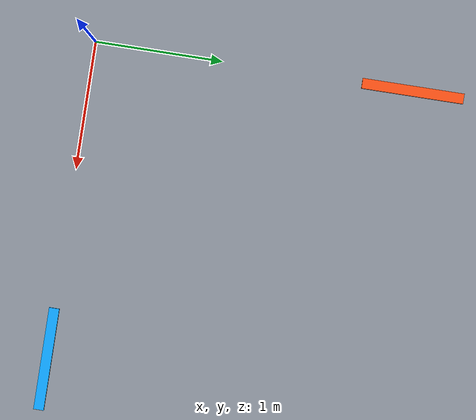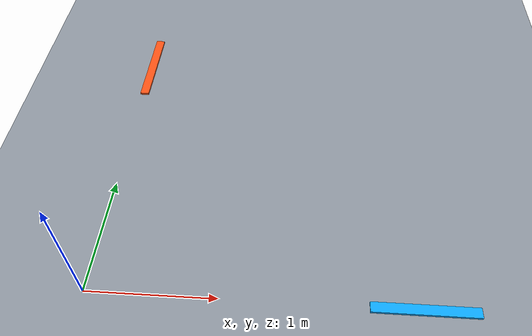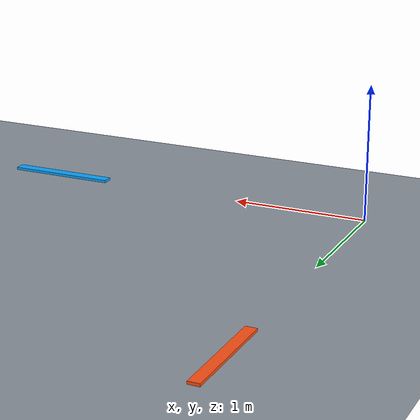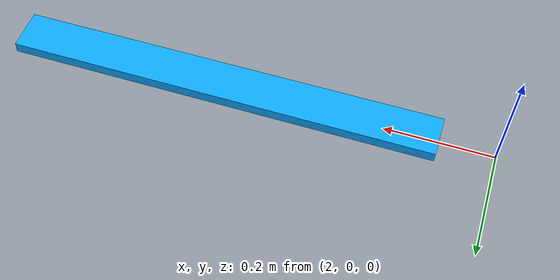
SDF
<?xml version="1.0"?>
<sdf version="1.9">
  <world name="openarm_official">
    <physics name="fixed_1ms" type="ignored">
      <max_step_size>0.001</max_step_size>
      <real_time_factor>1.0</real_time_factor>
      <real_time_update_rate>1000</real_time_update_rate>
    </physics>

    <gravity>0 0 -9.80665</gravity>
    <plugin filename="gz-sim-physics-system" name="gz::sim::systems::Physics"/>
    <plugin filename="gz-sim-user-commands-system" name="gz::sim::systems::UserCommands"/>
    <plugin filename="gz-sim-scene-broadcaster-system" name="gz::sim::systems::SceneBroadcaster"/>
    <plugin filename="gz-sim-sensors-system" name="gz::sim::systems::Sensors">
      <render_engine>ogre2</render_engine>
    </plugin>

    <scene>
      <ambient>0.45 0.45 0.48 1</ambient>
      <background>0.08 0.10 0.14 1</background>
      <shadows>true</shadows>
    </scene>

    <light name="sun" type="directional">
      <cast_shadows>true</cast_shadows>
      <pose>0 0 8 0 0 0</pose>
      <diffuse>0.9 0.9 0.9 1</diffuse>
      <specular>0.2 0.2 0.2 1</specular>
      <direction>-0.4 0.2 -0.9</direction>
    </light>

    <model name="ground_plane">
      <static>true</static>
      <link name="ground_link">
        <collision name="ground_collision">
          <geometry>
            <plane><normal>0 0 1</normal><size>20 20</size></plane>
          </geometry>
          <surface>
            <friction>
              <ode><mu>1.2</mu><mu2>1.2</mu2></ode>
            </friction>
          </surface>
        </collision>
        <visual name="ground_visual">
          <geometry>
            <plane><normal>0 0 1</normal><size>20 20</size></plane>
          </geometry>
          <material>
            <ambient>0.42 0.44 0.48 1</ambient>
            <diffuse>0.55 0.58 0.62 1</diffuse>
          </material>
        </visual>
      </link>
    </model>

    <model name="forward_marker">
      <static>true</static>
      <pose>2.5 0 0.01 0 0 0</pose>
      <link name="link">
        <visual name="visual">
          <geometry><box><size>0.8 0.08 0.02</size></box></geometry>
          <material>
            <ambient>0.05 0.55 0.95 1</ambient>
            <diffuse>0.05 0.65 1.0 1</diffuse>
          </material>
        </visual>
      </link>
    </model>

    <model name="left_marker">
      <static>true</static>
      <pose>0 2.5 0.01 0 0 0</pose>
      <link name="link">
        <visual name="visual">
          <geometry><box><size>0.08 0.8 0.02</size></box></geometry>
          <material>
            <ambient>0.95 0.25 0.08 1</ambient>
            <diffuse>1.0 0.32 0.08 1</diffuse>
          </material>
        </visual>
      </link>
    </model>
  </world>
</sdf>
